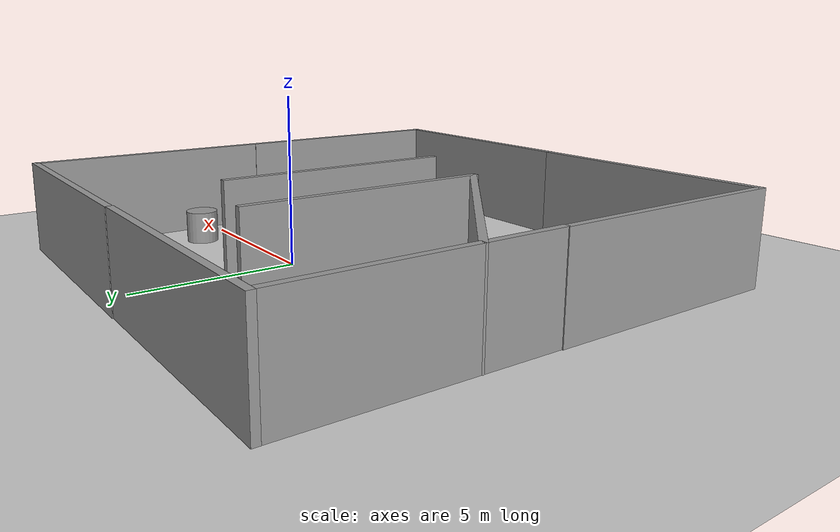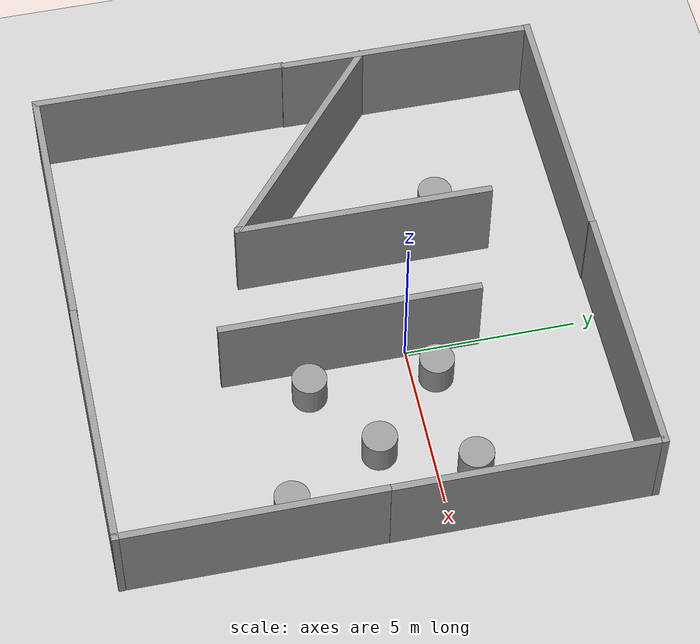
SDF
<sdf version="1.7">
 <world name="default">
  <light name="sun" type="directional">
   <pose>0 0 10 0 -0 0</pose>
   <diffuse>0.8 0.8 0.8 1</diffuse>
   <specular>0.2 0.2 0.2 1</specular>
   <attenuation>
    <range>1000</range>
    <constant>0.9</constant>
    <linear>0.01</linear>
    <quadratic>0.001</quadratic>
   </attenuation>
   <direction>-0.5 0.1 -0.9</direction>
   <spot><inner_angle>0</inner_angle><outer_angle>0</outer_angle><falloff>0</falloff></spot>
  </light>
  <model name="ground_plane">
   <static>1</static>
   <link name="link">
    <collision name="collision">
     <geometry><plane><normal>0 0 1</normal><size>100 100</size></plane></geometry>
     <surface><friction><ode><mu>100</mu><mu2>50</mu2></ode></friction></surface>
    </collision>
    <visual name="visual">
     <cast_shadows>0</cast_shadows>
     <geometry><plane><normal>0 0 1</normal><size>100 100</size></plane></geometry>
     <material>
      <script><uri>file://media/materials/scripts/gazebo.material</uri><name>Gazebo/Grey</name></script>
     </material>
    </visual>
   </link>
  </model>
  <gravity>0 0 -9.8</gravity>
  <magnetic_field>6e-06 2.3e-05 -4.2e-05</magnetic_field>
  <atmosphere type="adiabatic"/>
  <physics type="ode">
   <max_step_size>0.001</max_step_size>
   <real_time_factor>1</real_time_factor>
   <real_time_update_rate>1000</real_time_update_rate>
  </physics>
  <scene><ambient>0.4 0.4 0.4 1</ambient><background>0.7 0.7 0.7 1</background><shadows>1</shadows></scene>
  <spherical_coordinates>
   <surface_model>EARTH_WGS84</surface_model>
   <latitude_deg>0</latitude_deg>
   <longitude_deg>0</longitude_deg>
   <elevation>0</elevation>
   <heading_deg>0</heading_deg>
  </spherical_coordinates>
  <model name="grey_wall">
   <static>1</static>
   <link name="link">
    <pose>0 0 1.4 0 -0 0</pose>
    <collision name="collision"><geometry><box><size>7.5 0.2 2.8</size></box></geometry></collision>
    <visual name="visual">
     <cast_shadows>0</cast_shadows>
     <geometry><box><size>7.5 0.2 2.8</size></box></geometry>
     <material>
      <script>
       <uri>model://grey_wall/materials/scripts</uri>
       <uri>model://grey_wall/materials/textures</uri>
       <name>vrc/grey_wall</name>
      </script>
     </material>
    </visual>
   </link>
   <pose>-5.24098 5.71766 0 0 -0 0</pose>
  </model>
  <model name="unit_cylinder">
   <pose>-4.79838 1.97187 0.499997 3e-06 1e-06 -0</pose>
   <link name="link">
    <inertial>
     <mass>1</mass>
     <inertia><ixx>0.145833</ixx><ixy>0</ixy><ixz>0</ixz><iyy>0.145833</iyy><iyz>0</iyz><izz>0.125</izz></inertia>
    </inertial>
    <collision name="collision">
     <geometry><cylinder><radius>0.5</radius><length>1</length></cylinder></geometry>
    </collision>
    <visual name="visual">
     <geometry><cylinder><radius>0.5</radius><length>1</length></cylinder></geometry>
     <material>
      <script><name>Gazebo/Grey</name><uri>file://media/materials/scripts/gazebo.material</uri></script>
     </material>
    </visual>
   </link>
  </model>
  <model name="unit_cylinder_0">
   <pose>4.20085 1.05732 0.499994 -3e-06 -1e-06 -0</pose>
   <link name="link">
    <inertial>
     <mass>1</mass>
     <inertia><ixx>0.145833</ixx><ixy>0</ixy><ixz>0</ixz><iyy>0.145833</iyy><iyz>0</iyz><izz>0.125</izz></inertia>
    </inertial>
    <collision name="collision">
     <geometry><cylinder><radius>0.5</radius><length>1</length></cylinder></geometry>
    </collision>
    <visual name="visual">
     <geometry><cylinder><radius>0.5</radius><length>1</length></cylinder></geometry>
     <material>
      <script><name>Gazebo/Grey</name><uri>file://media/materials/scripts/gazebo.material</uri></script>
     </material>
    </visual>
   </link>
  </model>
  <model name="grey_wall_0">
   <static>1</static>
   <link name="link">
    <pose>0 0 1.4 0 -0 0</pose>
    <collision name="collision"><geometry><box><size>7.5 0.2 2.8</size></box></geometry></collision>
    <visual name="visual">
     <cast_shadows>0</cast_shadows>
     <geometry><box><size>7.5 0.2 2.8</size></box></geometry>
     <material>
      <script>
       <uri>model://grey_wall/materials/scripts</uri>
       <uri>model://grey_wall/materials/textures</uri>
       <name>vrc/grey_wall</name>
      </script>
     </material>
    </visual>
   </link>
   <pose>-3.25137 -0.517585 -0 0 0 -1.57641</pose>
  </model>
  <model name="grey_wall_1">
   <static>1</static>
   <link name="link">
    <pose>0 0 1.4 0 -0 0</pose>
    <collision name="collision"><geometry><box><size>7.5 0.2 2.8</size></box></geometry></collision>
    <visual name="visual">
     <cast_shadows>0</cast_shadows>
     <geometry><box><size>7.5 0.2 2.8</size></box></geometry>
     <material>
      <script>
       <uri>model://grey_wall/materials/scripts</uri>
       <uri>model://grey_wall/materials/textures</uri>
       <name>vrc/grey_wall</name>
      </script>
     </material>
    </visual>
   </link>
   <pose>2.24108 5.74011 0 0 -0 0</pose>
  </model>
  <model name="grey_wall_2">
   <static>1</static>
   <link name="link">
    <pose>0 0 1.4 0 -0 0</pose>
    <collision name="collision"><geometry><box><size>7.5 0.2 2.8</size></box></geometry></collision>
    <visual name="visual">
     <cast_shadows>0</cast_shadows>
     <geometry><box><size>7.5 0.2 2.8</size></box></geometry>
     <material>
      <script>
       <uri>model://grey_wall/materials/scripts</uri>
       <uri>model://grey_wall/materials/textures</uri>
       <name>vrc/grey_wall</name>
      </script>
     </material>
    </visual>
   </link>
   <pose>-0.013142 -1.60165 0 0 0 -1.57761</pose>
  </model>
  <model name="grey_wall_0_clone">
   <static>1</static>
   <link name="link">
    <pose>0 0 1.4 0 -0 0</pose>
    <collision name="collision"><geometry><box><size>7.5 0.2 2.8</size></box></geometry></collision>
    <visual name="visual">
     <cast_shadows>0</cast_shadows>
     <geometry><box><size>7.5 0.2 2.8</size></box></geometry>
     <material>
      <script>
       <uri>model://grey_wall/materials/scripts</uri>
       <uri>model://grey_wall/materials/textures</uri>
       <name>vrc/grey_wall</name>
      </script>
     </material>
    </visual>
   </link>
   <pose>-8.90482 1.95123 -0 0 0 -1.57641</pose>
  </model>
  <model name="grey_wall_0_clone_0">
   <static>1</static>
   <link name="link">
    <pose>0 0 1.4 0 -0 0</pose>
    <collision name="collision"><geometry><box><size>7.5 0.2 2.8</size></box></geometry></collision>
    <visual name="visual">
     <cast_shadows>0</cast_shadows>
     <geometry><box><size>7.5 0.2 2.8</size></box></geometry>
     <material>
      <script>
       <uri>model://grey_wall/materials/scripts</uri>
       <uri>model://grey_wall/materials/textures</uri>
       <name>vrc/grey_wall</name>
      </script>
     </material>
    </visual>
   </link>
   <pose>-8.97442 -5.48562 -0 0 0 -1.57641</pose>
  </model>
  <model name="grey_wall_0_clone_1">
   <static>1</static>
   <link name="link">
    <pose>0 0 1.4 0 -0 0</pose>
    <collision name="collision"><geometry><box><size>7.5 0.2 2.8</size></box></geometry></collision>
    <visual name="visual">
     <cast_shadows>0</cast_shadows>
     <geometry><box><size>7.5 0.2 2.8</size></box></geometry>
     <material>
      <script>
       <uri>model://grey_wall/materials/scripts</uri>
       <uri>model://grey_wall/materials/textures</uri>
       <name>vrc/grey_wall</name>
      </script>
     </material>
    </visual>
   </link>
   <pose>5.86698 1.97456 -0 0 0 -1.57641</pose>
  </model>
  <model name="grey_wall_0_clone_2">
   <static>1</static>
   <link name="link">
    <pose>0 0 1.4 0 -0 0</pose>
    <collision name="collision"><geometry><box><size>7.5 0.2 2.8</size></box></geometry></collision>
    <visual name="visual">
     <cast_shadows>0</cast_shadows>
     <geometry><box><size>7.5 0.2 2.8</size></box></geometry>
     <material>
      <script>
       <uri>model://grey_wall/materials/scripts</uri>
       <uri>model://grey_wall/materials/textures</uri>
       <name>vrc/grey_wall</name>
      </script>
     </material>
    </visual>
   </link>
   <pose>5.81808 -5.50178 -0 0 0 -1.57641</pose>
  </model>
  <model name="grey_wall_1_clone">
   <static>1</static>
   <link name="link">
    <pose>0 0 1.4 0 -0 0</pose>
    <collision name="collision"><geometry><box><size>7.5 0.2 2.8</size></box></geometry></collision>
    <visual name="visual">
     <cast_shadows>0</cast_shadows>
     <geometry><box><size>7.5 0.2 2.8</size></box></geometry>
     <material>
      <script>
       <uri>model://grey_wall/materials/scripts</uri>
       <uri>model://grey_wall/materials/textures</uri>
       <name>vrc/grey_wall</name>
      </script>
     </material>
    </visual>
   </link>
   <pose>-5.25598 -9.13521 0 0 -0 0</pose>
  </model>
  <model name="grey_wall_1_clone_0">
   <static>1</static>
   <link name="link">
    <pose>0 0 1.4 0 -0 0</pose>
    <collision name="collision"><geometry><box><size>7.5 0.2 2.8</size></box></geometry></collision>
    <visual name="visual">
     <cast_shadows>0</cast_shadows>
     <geometry><box><size>7.5 0.2 2.8</size></box></geometry>
     <material>
      <script>
       <uri>model://grey_wall/materials/scripts</uri>
       <uri>model://grey_wall/materials/textures</uri>
       <name>vrc/grey_wall</name>
      </script>
     </material>
    </visual>
   </link>
   <pose>2.15566 -9.14938 0 0 -0 0</pose>
  </model>
  <model name="grey_wall_clone">
   <static>1</static>
   <link name="link">
    <pose>0 0 1.4 0 -0 0</pose>
    <collision name="collision"><geometry><box><size>7.5 0.2 2.8</size></box></geometry></collision>
    <visual name="visual">
     <cast_shadows>0</cast_shadows>
     <geometry><box><size>7.5 0.2 2.8</size></box></geometry>
     <material>
      <script>
       <uri>model://grey_wall/materials/scripts</uri>
       <uri>model://grey_wall/materials/textures</uri>
       <name>vrc/grey_wall</name>
      </script>
     </material>
    </visual>
   </link>
   <pose>-6.11808 -1.75517 -0 0 0 -0.701694</pose>
  </model>
  <model name="unit_cylinder_clone">
   <pose>0.981466 0.686251 0.499996 4e-06 1e-06 0</pose>
   <link name="link">
    <inertial>
     <mass>1</mass>
     <inertia><ixx>0.145833</ixx><ixy>0</ixy><ixz>0</ixz><iyy>0.145833</iyy><iyz>0</iyz><izz>0.125</izz></inertia>
    </inertial>
    <collision name="collision">
     <geometry><cylinder><radius>0.5</radius><length>1</length></cylinder></geometry>
    </collision>
    <visual name="visual">
     <geometry><cylinder><radius>0.5</radius><length>1</length></cylinder></geometry>
     <material>
      <script><name>Gazebo/Grey</name><uri>file://media/materials/scripts/gazebo.material</uri></script>
     </material>
    </visual>
   </link>
  </model>
  <model name="unit_cylinder_clone_0">
   <pose>3.16056 -1.44877 0.499998 3e-06 -2e-06 0</pose>
   <link name="link">
    <inertial>
     <mass>1</mass>
     <inertia><ixx>0.145833</ixx><ixy>0</ixy><ixz>0</ixz><iyy>0.145833</iyy><iyz>0</iyz><izz>0.125</izz></inertia>
    </inertial>
    <collision name="collision">
     <geometry><cylinder><radius>0.5</radius><length>1</length></cylinder></geometry>
    </collision>
    <visual name="visual">
     <geometry><cylinder><radius>0.5</radius><length>1</length></cylinder></geometry>
     <material>
      <script><name>Gazebo/Grey</name><uri>file://media/materials/scripts/gazebo.material</uri></script>
     </material>
    </visual>
   </link>
  </model>
  <model name="unit_cylinder_clone_1">
   <pose>4.5374 -4.19989 0.499993 -3e-06 3e-06 0</pose>
   <link name="link">
    <inertial>
     <mass>1</mass>
     <inertia><ixx>0.145833</ixx><ixy>0</ixy><ixz>0</ixz><iyy>0.145833</iyy><iyz>0</iyz><izz>0.125</izz></inertia>
    </inertial>
    <collision name="collision">
     <geometry><cylinder><radius>0.5</radius><length>1</length></cylinder></geometry>
    </collision>
    <visual name="visual">
     <geometry><cylinder><radius>0.5</radius><length>1</length></cylinder></geometry>
     <material>
      <script><name>Gazebo/Grey</name><uri>file://media/materials/scripts/gazebo.material</uri></script>
     </material>
    </visual>
   </link>
  </model>
  <model name="unit_cylinder_clone_2">
   <pose>0.901779 -2.97192 0.499998 3e-06 -4e-06 0</pose>
   <link name="link">
    <inertial>
     <mass>1</mass>
     <inertia><ixx>0.145833</ixx><ixy>0</ixy><ixz>0</ixz><iyy>0.145833</iyy><iyz>0</iyz><izz>0.125</izz></inertia>
    </inertial>
    <collision name="collision">
     <geometry><cylinder><radius>0.5</radius><length>1</length></cylinder></geometry>
    </collision>
    <visual name="visual">
     <geometry><cylinder><radius>0.5</radius><length>1</length></cylinder></geometry>
     <material>
      <script><name>Gazebo/Grey</name><uri>file://media/materials/scripts/gazebo.material</uri></script>
     </material>
    </visual>
   </link>
  </model>
 </world>
</sdf>
